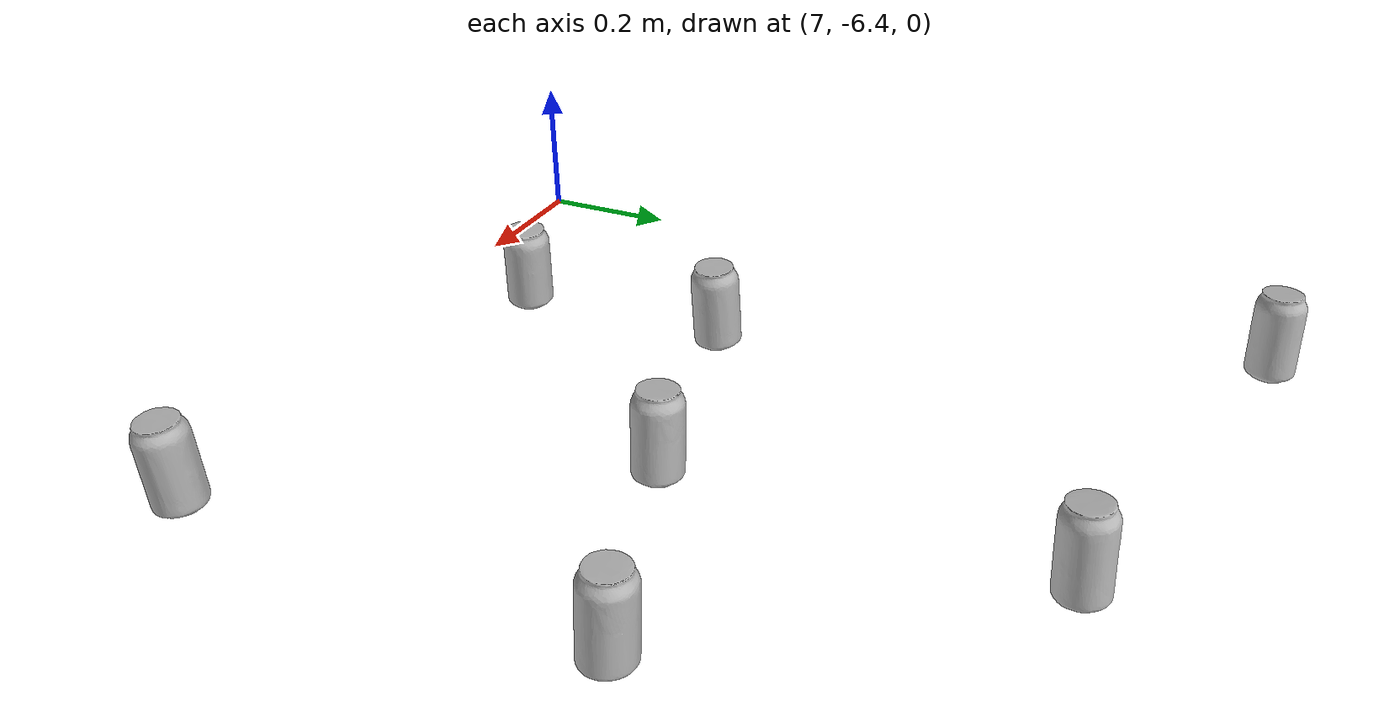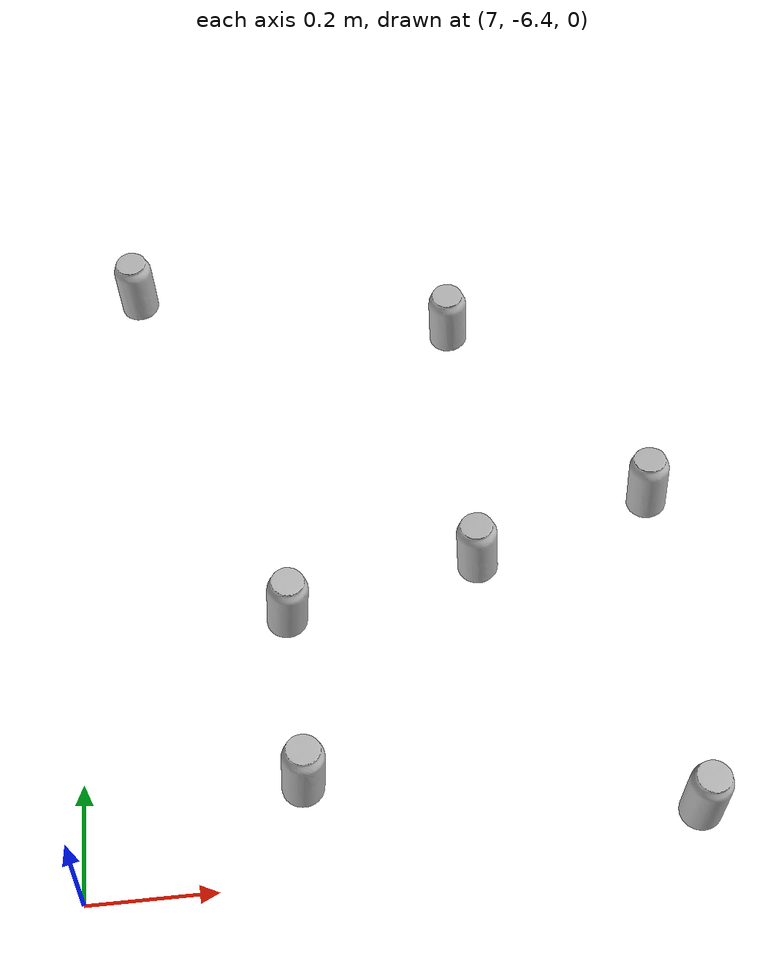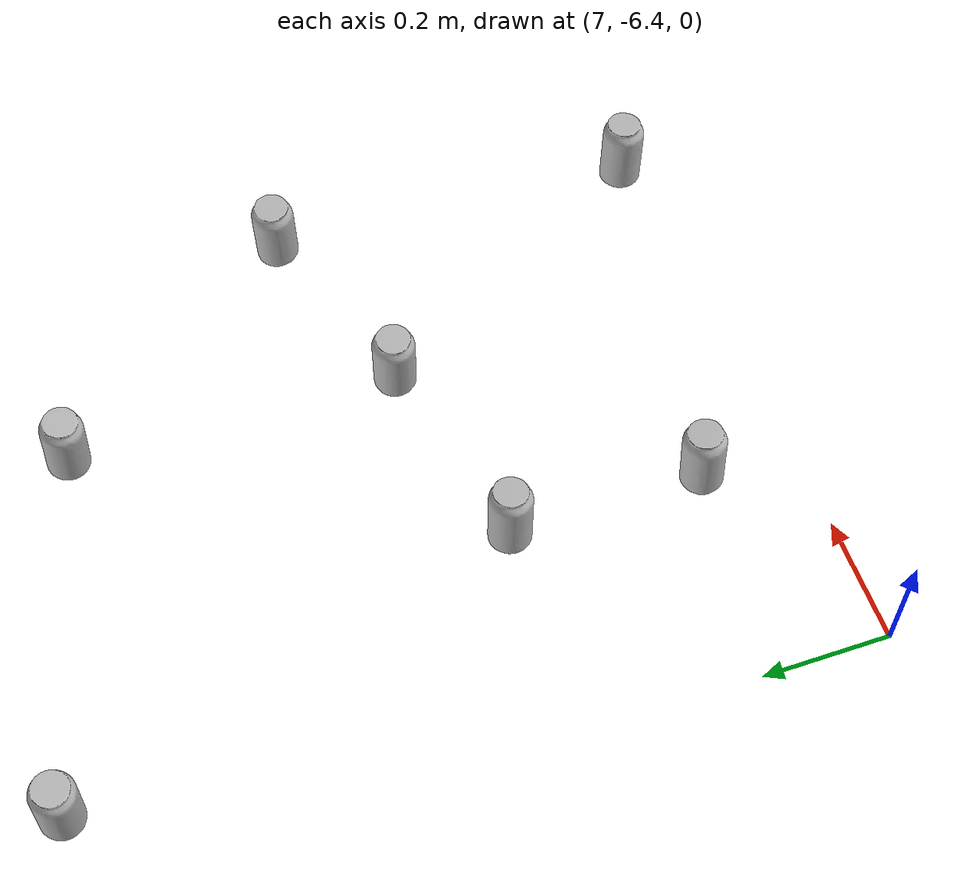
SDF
<sdf version="1.6">
 <world name="default">
  <model name="coke_can367">
   <link name="link">
    <inertial>
     <pose>0 0 0.06 0 -0 0</pose>
     <mass>0.39</mass>
     <inertia>
      <ixx>0.00055575</ixx>
      <ixy>0</ixy>
      <ixz>0</ixz>
      <iyy>0.00055575</iyy>
      <iyz>0</iyz>
      <izz>0.0001755</izz>
     </inertia>
    </inertial>
    <collision name="collision">
     <pose>0.003937 0.004724 -0.18 0 -0 0</pose>
     <geometry><mesh><uri>model://coke_can/meshes/coke_can.dae</uri></mesh></geometry>
     <surface>
      <friction><ode><mu>1</mu><mu2>1</mu2></ode></friction>
      <contact>
       <ode><kp>1e+07</kp><kd>1</kd><min_depth>0.001</min_depth><max_vel>0.1</max_vel></ode>
       <collide_bitmask>256</collide_bitmask>
      </contact>
     </surface>
    </collision>
    <visual name="visual">
     <pose>0.003937 0.004724 -0.18 0 -0 0</pose>
     <geometry><mesh><uri>model://coke_can/meshes/coke_can.dae</uri></mesh></geometry>
    </visual>
   </link>
   <pose>7.93488 -6.34637 -0.002659 -0.055096 0.007751 -1.84831</pose>
  </model>
  <model name="coke_can470">
   <link name="link">
    <inertial>
     <pose>0 0 0.06 0 -0 0</pose>
     <mass>0.39</mass>
     <inertia>
      <ixx>0.00055575</ixx>
      <ixy>0</ixy>
      <ixz>0</ixz>
      <iyy>0.00055575</iyy>
      <iyz>0</iyz>
      <izz>0.0001755</izz>
     </inertia>
    </inertial>
    <collision name="collision">
     <pose>0.003937 0.004724 -0.18 0 -0 0</pose>
     <geometry><mesh><uri>model://coke_can/meshes/coke_can.dae</uri></mesh></geometry>
     <surface>
      <friction><ode><mu>1</mu><mu2>1</mu2></ode></friction>
      <contact>
       <ode><kp>1e+07</kp><kd>1</kd><min_depth>0.001</min_depth><max_vel>0.1</max_vel></ode>
       <collide_bitmask>256</collide_bitmask>
      </contact>
     </surface>
    </collision>
    <visual name="visual">
     <pose>0.003937 0.004724 -0.18 0 -0 0</pose>
     <geometry><mesh><uri>model://coke_can/meshes/coke_can.dae</uri></mesh></geometry>
    </visual>
   </link>
   <pose>7.96306 -5.75632 -0.002659 -0.055092 0.007754 0.97103</pose>
  </model>
  <model name="coke_can480">
   <link name="link">
    <inertial>
     <pose>0 0 0.06 0 -0 0</pose>
     <mass>0.39</mass>
     <inertia>
      <ixx>0.00055575</ixx>
      <ixy>0</ixy>
      <ixz>0</ixz>
      <iyy>0.00055575</iyy>
      <iyz>0</iyz>
      <izz>0.0001755</izz>
     </inertia>
    </inertial>
    <collision name="collision">
     <pose>0.003937 0.004724 -0.18 0 -0 0</pose>
     <geometry><mesh><uri>model://coke_can/meshes/coke_can.dae</uri></mesh></geometry>
     <surface>
      <friction><ode><mu>1</mu><mu2>1</mu2></ode></friction>
      <contact>
       <ode><kp>1e+07</kp><kd>1</kd><min_depth>0.001</min_depth><max_vel>0.1</max_vel></ode>
       <collide_bitmask>256</collide_bitmask>
      </contact>
     </surface>
    </collision>
    <visual name="visual">
     <pose>0.003937 0.004724 -0.18 0 -0 0</pose>
     <geometry><mesh><uri>model://coke_can/meshes/coke_can.dae</uri></mesh></geometry>
    </visual>
   </link>
   <pose>7.65798 -5.85938 -0.002659 -0.0551 0.007749 1.38705</pose>
  </model>
  <model name="coke_can517">
   <link name="link">
    <inertial>
     <pose>0 0 0.06 0 -0 0</pose>
     <mass>0.39</mass>
     <inertia>
      <ixx>0.00055575</ixx>
      <ixy>0</ixy>
      <ixz>0</ixz>
      <iyy>0.00055575</iyy>
      <iyz>0</iyz>
      <izz>0.0001755</izz>
     </inertia>
    </inertial>
    <collision name="collision">
     <pose>0.003937 0.004724 -0.18 0 -0 0</pose>
     <geometry><mesh><uri>model://coke_can/meshes/coke_can.dae</uri></mesh></geometry>
     <surface>
      <friction><ode><mu>1</mu><mu2>1</mu2></ode></friction>
      <contact>
       <ode><kp>1e+07</kp><kd>1</kd><min_depth>0.001</min_depth><max_vel>0.1</max_vel></ode>
       <collide_bitmask>256</collide_bitmask>
      </contact>
     </surface>
    </collision>
    <visual name="visual">
     <pose>0.003937 0.004724 -0.18 0 -0 0</pose>
     <geometry><mesh><uri>model://coke_can/meshes/coke_can.dae</uri></mesh></geometry>
    </visual>
   </link>
   <pose>7.6716 -5.34138 -0.002659 -0.055094 0.007753 2.3687</pose>
  </model>
  <model name="coke_can626">
   <link name="link">
    <inertial>
     <pose>0 0 0.06 0 -0 0</pose>
     <mass>0.39</mass>
     <inertia>
      <ixx>0.00055575</ixx>
      <ixy>0</ixy>
      <ixz>0</ixz>
      <iyy>0.00055575</iyy>
      <iyz>0</iyz>
      <izz>0.0001755</izz>
     </inertia>
    </inertial>
    <collision name="collision">
     <pose>0.003937 0.004724 -0.18 0 -0 0</pose>
     <geometry><mesh><uri>model://coke_can/meshes/coke_can.dae</uri></mesh></geometry>
     <surface>
      <friction><ode><mu>1</mu><mu2>1</mu2></ode></friction>
      <contact>
       <ode><kp>1e+07</kp><kd>1</kd><min_depth>0.001</min_depth><max_vel>0.1</max_vel></ode>
       <collide_bitmask>256</collide_bitmask>
      </contact>
     </surface>
    </collision>
    <visual name="visual">
     <pose>0.003937 0.004724 -0.18 0 -0 0</pose>
     <geometry><mesh><uri>model://coke_can/meshes/coke_can.dae</uri></mesh></geometry>
    </visual>
   </link>
   <pose>7.3365 -6.24479 -0.002659 -0.055089 0.007757 -0.693338</pose>
  </model>
  <model name="coke_can686">
   <link name="link">
    <inertial>
     <pose>0 0 0.06 0 -0 0</pose>
     <mass>0.39</mass>
     <inertia>
      <ixx>0.00055575</ixx>
      <ixy>0</ixy>
      <ixz>0</ixz>
      <iyy>0.00055575</iyy>
      <iyz>0</iyz>
      <izz>0.0001755</izz>
     </inertia>
    </inertial>
    <collision name="collision">
     <pose>0.003937 0.004724 -0.18 0 -0 0</pose>
     <geometry><mesh><uri>model://coke_can/meshes/coke_can.dae</uri></mesh></geometry>
     <surface>
      <friction><ode><mu>1</mu><mu2>1</mu2></ode></friction>
      <contact>
       <ode><kp>1e+07</kp><kd>1</kd><min_depth>0.001</min_depth><max_vel>0.1</max_vel></ode>
       <collide_bitmask>256</collide_bitmask>
      </contact>
     </surface>
    </collision>
    <visual name="visual">
     <pose>0.003937 0.004724 -0.18 0 -0 0</pose>
     <geometry><mesh><uri>model://coke_can/meshes/coke_can.dae</uri></mesh></geometry>
    </visual>
   </link>
   <pose>7.11098 -5.20511 -0.002659 -0.055133 0.007728 1.8647</pose>
  </model>
  <model name="coke_can711">
   <link name="link">
    <inertial>
     <pose>0 0 0.06 0 -0 0</pose>
     <mass>0.39</mass>
     <inertia>
      <ixx>0.00055575</ixx>
      <ixy>0</ixy>
      <ixz>0</ixz>
      <iyy>0.00055575</iyy>
      <iyz>0</iyz>
      <izz>0.0001755</izz>
     </inertia>
    </inertial>
    <collision name="collision">
     <pose>0.003937 0.004724 -0.18 0 -0 0</pose>
     <geometry><mesh><uri>model://coke_can/meshes/coke_can.dae</uri></mesh></geometry>
     <surface>
      <friction><ode><mu>1</mu><mu2>1</mu2></ode></friction>
      <contact>
       <ode><kp>1e+07</kp><kd>1</kd><min_depth>0.001</min_depth><max_vel>0.1</max_vel></ode>
       <collide_bitmask>256</collide_bitmask>
      </contact>
     </surface>
    </collision>
    <visual name="visual">
     <pose>0.003937 0.004724 -0.18 0 -0 0</pose>
     <geometry><mesh><uri>model://coke_can/meshes/coke_can.dae</uri></mesh></geometry>
    </visual>
   </link>
   <pose>7.33306 -5.93484 -0.002659 -0.055111 0.007742 -1.61729</pose>
  </model>
 </world>
</sdf>
